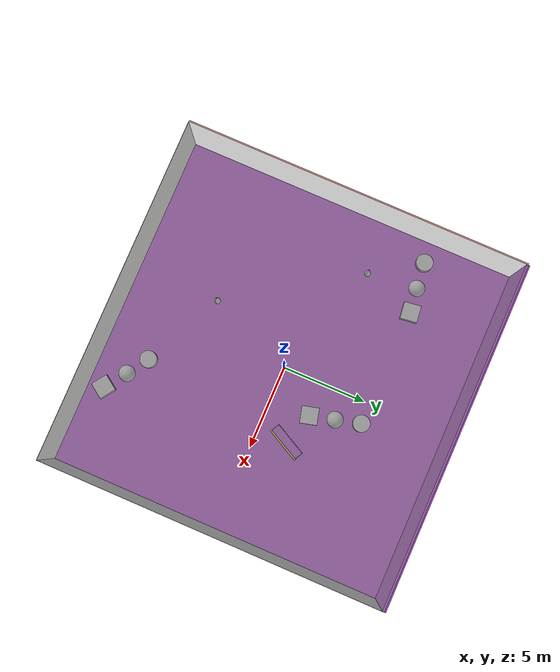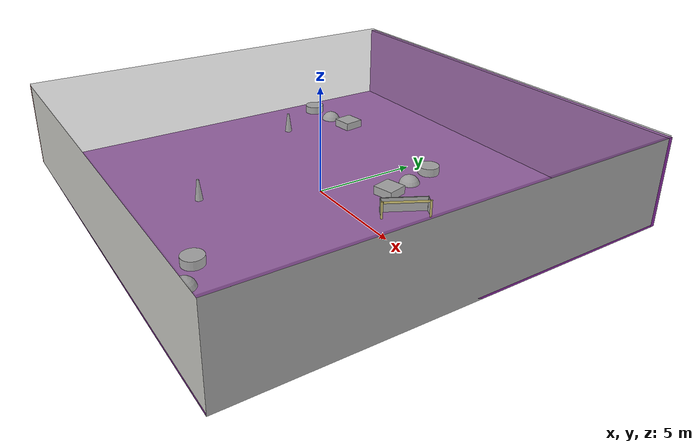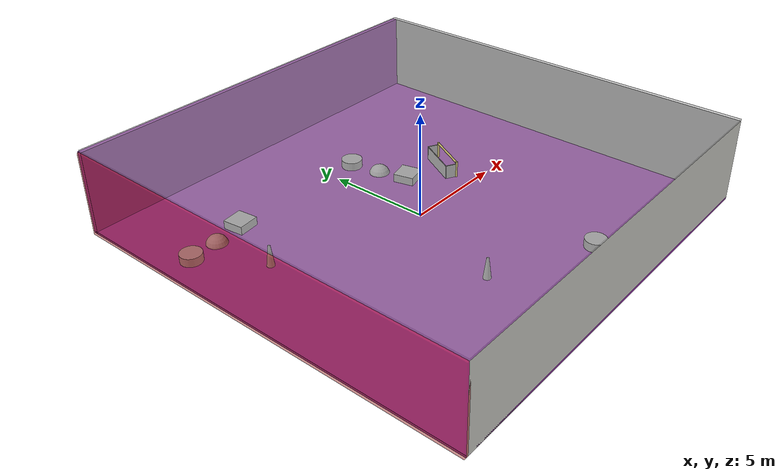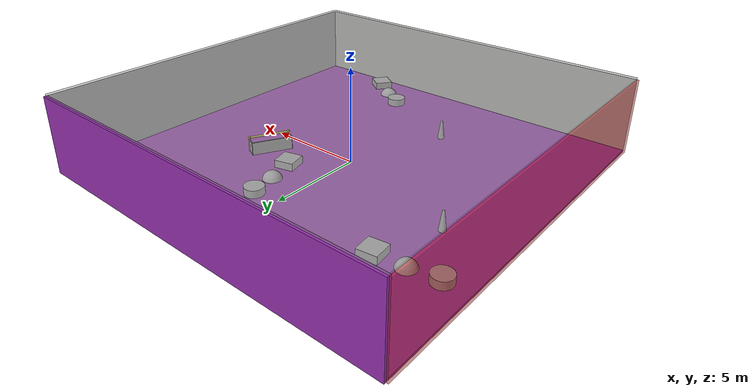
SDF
<sdf version="1.4">
 <world name="default">
  <physics type="ode">
   <max_step_size>0.001</max_step_size>
   <real_time_factor>1</real_time_factor>
   <real_time_update_rate>1000</real_time_update_rate>
   <gravity>0 0 -9.8</gravity>
  </physics>
  <scene><ambient>0.4 0.4 0.4 1</ambient><background>0.7 0.7 0.7 1</background><shadows>1</shadows></scene>
  <model name="Surrounding">
   <static>1</static>
   <link name="Ceiling">
    <collision name="Ceiling_Collision"><geometry><box><size>20 20 0.1</size></box></geometry></collision>
    <visual name="Ceiling_Visual">
     <geometry><box><size>20 20 0.1</size></box></geometry>
     <material>
      <script><uri>file://media/materials/scripts/gazebo.material</uri><name>Gazebo/GreyTransparent</name></script>
     </material>
    </visual>
    <pose>0 0 4.05 0 0 0</pose>
   </link>
   <link name="Wall_South">
    <collision name="Wall_South_Collision">
     <geometry><box><size>20 0 4</size></box></geometry>
     <pose>0 0 2 0 -0 0</pose>
    </collision>
    <visual name="Wall_South_Visual">
     <pose>0 0 2 0 -0 0</pose>
     <geometry><box><size>20 0 4</size></box></geometry>
     <material>
      <script><uri>file://media/materials/scripts/gazebo.material</uri><name>Gazebo/CeilingTiled</name></script>
     </material>
    </visual>
    <velocity_decay><linear>0</linear><angular>0</angular></velocity_decay>
    <pose>0 -10 0 0 -0 0</pose>
   </link>
   <link name="Wall_East">
    <collision name="Wall_21_Collision">
     <geometry><box><size>20 0 4</size></box></geometry>
     <pose>0 0 2 0 -0 0</pose>
    </collision>
    <visual name="Wall_21_Visual">
     <pose>0 0 2 0 -0 0</pose>
     <geometry><box><size>20 0 4</size></box></geometry>
     <material>
      <script><uri>file://media/materials/scripts/gazebo.material</uri><name>Gazebo/Pioneer2Body</name></script>
     </material>
    </visual>
    <velocity_decay><linear>0</linear><angular>0</angular></velocity_decay>
    <pose>10 0 0 0 -0 1.5708</pose>
   </link>
   <link name="Wall_North">
    <collision name="Wall_22_Collision">
     <geometry><box><size>20 0.2 4</size></box></geometry>
     <pose>0 0 2 0 -0 0</pose>
    </collision>
    <visual name="Wall_22_Visual">
     <pose>0 0 2 0 -0 0</pose>
     <geometry><box><size>20 0.2 4</size></box></geometry>
     <material>
      <script><uri>file://media/materials/scripts/gazebo.material</uri><name>Gazebo/PurpleGlow</name></script>
     </material>
    </visual>
    <velocity_decay><linear>0</linear><angular>0</angular></velocity_decay>
    <pose>0 10 0 0 -0 0</pose>
   </link>
   <link name="Wall_West">
    <collision name="Wall_23_Collision">
     <geometry><box><size>20 0.2 4</size></box></geometry>
     <pose>0 0 2 0 -0 0</pose>
    </collision>
    <visual name="Wall_23_Visual">
     <pose>0 0 2 0 -0 0</pose>
     <geometry><box><size>20 0.2 4</size></box></geometry>
     <material>
      <script><uri>file://media/materials/scripts/gazebo.material</uri><name>Gazebo/RedTransparent</name></script>
     </material>
    </visual>
    <velocity_decay><linear>0</linear><angular>0</angular></velocity_decay>
    <pose>-10 0 0 0 0 -1.5708</pose>
   </link>
   <link name="Ground_link">
    <collision name="collision">
     <pose>0 0 .05 0 -0 0</pose>
     <geometry><box><size>20 20 0.1</size></box></geometry>
    </collision>
    <visual name="visual">
     <pose>0 0 .05 0 -0 0</pose>
     <geometry><box><size>20 20 0.1</size></box></geometry>
     <material>
      <script><uri>file://media/materials/scripts/gazebo.material</uri><name>Gazebo/Purple</name></script>
     </material>
    </visual>
   </link>
   <static>1</static>
  </model>
  <spherical_coordinates>
   <surface_model>EARTH_WGS84</surface_model>
   <latitude_deg>0</latitude_deg>
   <longitude_deg>0</longitude_deg>
   <elevation>0</elevation>
   <heading_deg>0</heading_deg>
  </spherical_coordinates>
  <light name="lightball_0" type="diffuse">
   <diffuse>0.8 0.8 0.8 1</diffuse>
   <specular>0.2 0.2 0.2 1</specular>
   <attenuation>
    <range>100</range>
    <constant>0.7</constant>
    <linear>0.01</linear>
    <quadratic>0.001</quadratic>
   </attenuation>
   <direction>-0.5 0.1 -0.9</direction>
   <pose>-1.26632082153 1.58706733599 3.19369631911 0 0 0</pose>
  </light>
  <include>
   <uri>model://construction_cone</uri>
   <pose>-6.92758988737 2.25539322949 0 0 0 1.00636263512</pose>
  </include>
  <include>
   <uri>model://textured_shapes</uri>
   <pose>-7.26295091193 5.22410462611 0 0 0 1.69547218397</pose>
  </include>
  <include>
   <uri>model://construction_cone</uri>
   <pose>-2.02205395776 -5.08993574254 0 0 0 0.7747583811</pose>
  </include>
  <include>
   <uri>model://textured_shapes</uri>
   <pose>1.60989747269 3.85688774981 0 0 0 0.252157974017</pose>
  </include>
  <include>
   <uri>model://textured_shapes</uri>
   <pose>3.90961319548 -8.19895497659 0 0 0 0.96115442853</pose>
  </include>
  <include>
   <uri>model://robocup_3Dsim_goal</uri>
   <pose>4.12809636266 1.68609099097 0 0 0 2.6582488385</pose>
  </include>
 </world>
</sdf>

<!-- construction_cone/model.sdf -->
<sdf version="1.5">
  <model name="Construction Cone">
    <link name="link">
      <collision name="collision">
        <geometry>
          <mesh>
            <scale>10 10 10</scale>
            <uri>file://isr-testbed/construction_cone/meshes/construction_cone.dae</uri>
          </mesh>
        </geometry>
      </collision>
      <visual name="visual">
        <geometry>
          <mesh>
            <scale>10 10 10</scale>
            <uri>file://isr-testbed/construction_cone/meshes/construction_cone.dae</uri>
          </mesh>
        </geometry>
      </visual>
    </link>
  </model>
</sdf>

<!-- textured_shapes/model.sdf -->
<sdf version="1.6">
  <model name="textured_shapes">
    <pose>0 0 0.5 0 0 0</pose>
    <link name="box">
      <pose>0 -1.5 0 0 0 0</pose>
      <collision name="collision">
        <geometry>
          <box>
            <size>1 1 1</size>
          </box>
        </geometry>
      </collision>
      <visual name="visual">
        <geometry>
          <box>
            <size>1 1 1</size>
          </box>
        </geometry>
        <material>
          <script>
            <uri>model://../model_source/models/textured_shapes/materials/scripts</uri>
            <uri>model://../model_source/models/textured_shapes/materials/textures</uri>
            <name>TexturedShape/Squares</name>
          </script>
        </material>
      </visual>
    </link>
    <link name="sphere">
      <collision name="collision">
        <geometry>
          <sphere>
            <radius>0.5</radius>
          </sphere>
        </geometry>
      </collision>
      <visual name="visual">
        <geometry>
          <sphere>
            <radius>0.5</radius>
          </sphere>
        </geometry>
        <material>
          <script>
            <uri>model://../model_source/models/textured_shapes/materials/scripts</uri>
            <uri>model://../model_source/models/textured_shapes/materials/textures</uri>
            <name>TexturedShape/Squares</name>
          </script>
        </material>
      </visual>
    </link>
    <link name="cylinder">
      <pose>0 1.5 0 0 0 0</pose>
      <collision name="collision">
        <geometry>
          <cylinder>
            <radius>0.5</radius>
            <length>1</length>
          </cylinder>
        </geometry>
      </collision>
      <visual name="visual">
        <geometry>
          <cylinder>
            <radius>0.5</radius>
            <length>1</length>
          </cylinder>
        </geometry>
        <material>
          <script>
            <uri>model://../model_source/models/textured_shapes/materials/scripts</uri>
            <uri>model://../model_source/models/textured_shapes/materials/textures</uri>
            <name>TexturedShape/Squares</name>
          </script>
        </material>
      </visual>
    </link>
  </model>
</sdf>

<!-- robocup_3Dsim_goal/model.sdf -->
<sdf version="1.5">
  <model name="robocup_3d_goal">
    <static>true</static>
    <link name="left_post">
      <pose>0 1.05 0.45 0 0 0</pose>
      <collision name="collision">
        <geometry>
          <cylinder>
            <radius>0.05</radius>
            <length>0.9</length>
          </cylinder>
        </geometry>
      </collision>
      <visual name="visual">
        <geometry>
          <cylinder>
            <radius>0.05</radius>
            <length>0.9</length>
          </cylinder>
        </geometry>
        <material>
          <script>
            <uri>file://media/materials/scripts/gazebo.material</uri>
            <name>Gazebo/ZincYellow</name>
          </script>
        </material>
      </visual>
    </link>
    <link name="left_support_horiz_lower">
      <pose>0.30 1.05 0.01 0 0 0</pose>
      <collision name="collision">
        <geometry>
          <box>
            <size>0.50 0.02 0.02</size>
          </box>
        </geometry>
      </collision>
      <visual name="visual">
        <geometry>
          <box>
            <size>0.50 0.02 0.02</size>
          </box>
        </geometry>
        <material>
          <script>
            <uri>file://media/materials/scripts/gazebo.material</uri>
            <name>Gazebo/White</name>
          </script>
        </material>
      </visual>
    </link>
    <link name="left_support_horiz_upper">
      <pose>0.30 1.05 0.79 0 0 0</pose>
      <collision name="collision">
        <geometry>
          <box>
            <size>0.50 0.02 0.02</size>
          </box>
        </geometry>
      </collision>
      <visual name="visual">
        <geometry>
          <box>
            <size>0.50 0.02 0.02</size>
          </box>
        </geometry>
        <material>
          <script>
            <uri>file://media/materials/scripts/gazebo.material</uri>
            <name>Gazebo/White</name>
          </script>
        </material>
      </visual>
    </link>
    <link name="left_support_vertical">
      <pose>0.56 1.05 0.4 0 1.5708 0</pose>
      <collision name="collision">
        <geometry>
          <box>
            <size>0.80 0.02 0.02</size>
          </box>
        </geometry>
      </collision>
      <visual name="visual">
        <geometry>
          <box>
            <size>0.80 0.02 0.02</size>
          </box>
        </geometry>
        <material>
          <script>
            <uri>file://media/materials/scripts/gazebo.material</uri>
            <name>Gazebo/White</name>
          </script>
        </material>
      </visual>
    </link>
    <link name="right_support_horiz_lower">
      <pose>0.30 -1.05 0.01 0 0 0</pose>
      <collision name="collision">
        <geometry>
          <box>
            <size>0.50 0.02 0.02</size>
          </box>
        </geometry>
      </collision>
      <visual name="visual">
        <geometry>
          <box>
            <size>0.50 0.02 0.02</size>
          </box>
        </geometry>
        <material>
          <script>
            <uri>file://media/materials/scripts/gazebo.material</uri>
            <name>Gazebo/White</name>
          </script>
        </material>
      </visual>
    </link>
    <link name="right_support_horiz_upper">
      <pose>0.30 -1.05 0.79 0 0 0</pose>
      <collision name="collision">
        <geometry>
          <box>
            <size>0.50 0.02 0.02</size>
          </box>
        </geometry>
      </collision>
      <visual name="visual">
        <geometry>
          <box>
            <size>0.50 0.02 0.02</size>
          </box>
        </geometry>
        <material>
          <script>
            <uri>file://media/materials/scripts/gazebo.material</uri>
            <name>Gazebo/White</name>
          </script>
        </material>
      </visual>
    </link>
    <link name="right_support_vertical">
      <pose>0.56 -1.05 0.4 0 1.5708 0</pose>
      <collision name="collision">
        <geometry>
          <box>
            <size>0.80 0.02 0.02</size>
          </box>
        </geometry>
      </collision>
      <visual name="visual">
        <geometry>
          <box>
            <size>0.80 0.02 0.02</size>
          </box>
        </geometry>
        <material>
          <script>
            <uri>file://media/materials/scripts/gazebo.material</uri>
            <name>Gazebo/White</name>
          </script>
        </material>
      </visual>
    </link>
    <link name="center_support_horiz_lower">
      <pose>0.56 0 0.01 0 1.5708 0</pose>
      <collision name="collision">
        <geometry>
          <box>
            <size>0.02 2.08 0.02</size>
          </box>
        </geometry>
      </collision>
      <visual name="visual">
        <geometry>
          <box>
            <size>0.02 2.08 0.02</size>
          </box>
        </geometry>
        <material>
          <script>
            <uri>file://media/materials/scripts/gazebo.material</uri>
            <name>Gazebo/White</name>
          </script>
        </material>
      </visual>
    </link>
    <link name="center_support_horiz_upper">
      <pose>0.56 0 0.79 0 1.5708 0</pose>
      <collision name="collision">
        <geometry>
          <box>
            <size>0.02 2.08 0.02</size>
          </box>
        </geometry>
      </collision>
      <visual name="visual">
        <geometry>
          <box>
            <size>0.02 2.08 0.02</size>
          </box>
        </geometry>
        <material>
          <script>
            <uri>file://media/materials/scripts/gazebo.material</uri>
            <name>Gazebo/White</name>
          </script>
        </material>
      </visual>
    </link>
    <link name="right_post">
      <pose>0 -1.05 0.45 0 0 0</pose>
      <collision name="collision">
        <geometry>
          <cylinder>
            <radius>0.05</radius>
            <length>0.9</length>
          </cylinder>
        </geometry>
      </collision>
      <visual name="visual">
        <geometry>
          <cylinder>
            <radius>0.05</radius>
            <length>0.9</length>
          </cylinder>
        </geometry>
        <material>
          <script>
            <uri>file://media/materials/scripts/gazebo.material</uri>
            <name>Gazebo/ZincYellow</name>
          </script>
        </material>
      </visual>
    </link>
    <link name="crossbar">
      <pose>0 0 0.85 1.57 1.57 0</pose>
      <collision name="collision">
        <geometry>
          <cylinder>
            <radius>0.05</radius>
            <length>2.0</length>
          </cylinder>
        </geometry>
      </collision>
      <visual name="visual">
        <geometry>
          <cylinder>
            <radius>0.05</radius>
            <length>2.0</length>
          </cylinder>
        </geometry>
        <material>
          <script>
            <uri>file://media/materials/scripts/gazebo.material</uri>
            <name>Gazebo/ZincYellow</name>
          </script>
        </material>
      </visual>
    </link>
    <link name="center_net">
      <pose>0.56 0 0.40 0 0 0</pose>
      <collision name="collision">
        <geometry>
          <box>
            <size>0.01 2.1 0.80</size>
          </box>
        </geometry>
      </collision>
      <visual name="visual">
        <geometry>
          <box>
            <size>0.01 2.1 0.80</size>
          </box>
        </geometry>
        <material>
          <script>
            <uri>model://../model_source/models/robocup09_spl_field/materials/scripts/</uri>
            <uri>model://../model_source/models/robocup09_spl_field/materials/textures/</uri>
            <name>RoboCup/Net</name>
          </script>
        </material>
      </visual>
    </link>
    <link name="left_net">
      <pose>0.30 1.05 0.40 0 0 0</pose>
      <collision name="collision">
        <geometry>
          <box>
            <size>0.50 0.01 0.76</size>
          </box>
        </geometry>
      </collision>
      <visual name="visual">
        <geometry>
          <box>
            <size>0.50 0.01 0.76</size>
          </box>
        </geometry>
        <material>
          <script>
            <uri>model://../model_source/models/robocup09_spl_field/materials/scripts/</uri>
            <uri>model://../model_source/models/robocup09_spl_field/materials/textures/</uri>
            <name>RoboCup/Net</name>
          </script>
        </material>
      </visual>
    </link>
    <link name="right_net">
      <pose>0.30 -1.05 0.40 0 0 0</pose>
      <collision name="collision">
        <geometry>
          <box>
            <size>0.50 0.01 0.76</size>
          </box>
        </geometry>
      </collision>
      <visual name="visual">
        <geometry>
          <box>
            <size>0.50 0.01 0.76</size>
          </box>
        </geometry>
        <material>
          <script>
            <uri>model://../model_source/models/robocup09_spl_field/materials/scripts/</uri>
            <uri>model://../model_source/models/robocup09_spl_field/materials/textures/</uri>
            <name>RoboCup/Net</name>
          </script>
        </material>
      </visual>
    </link>
  </model>
</sdf>
